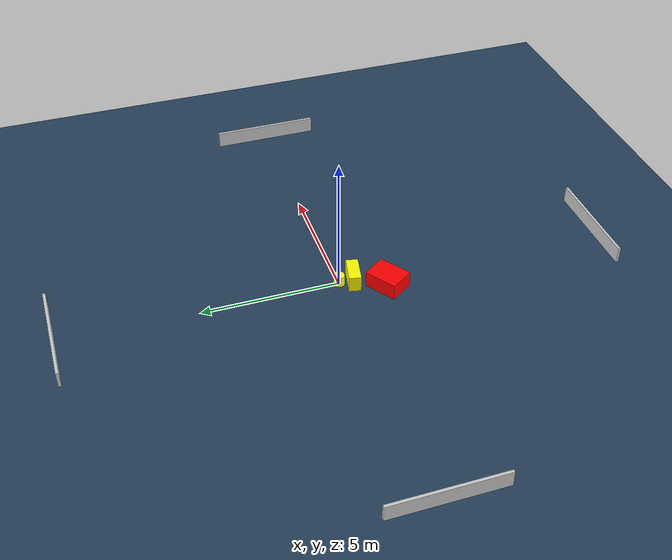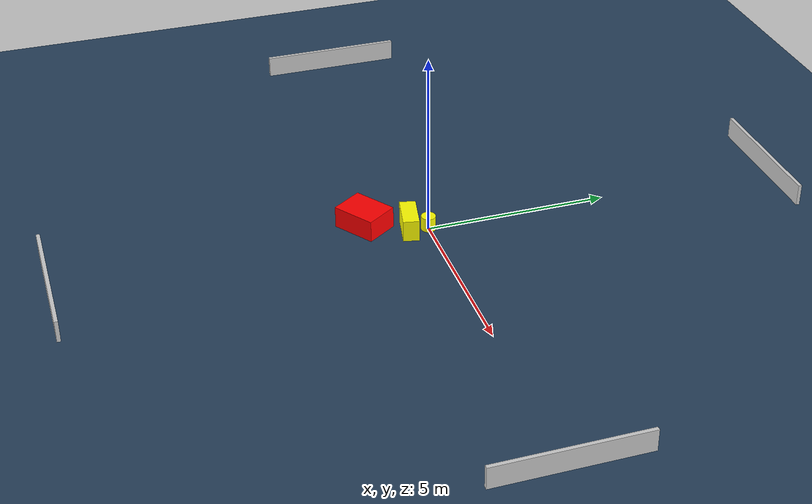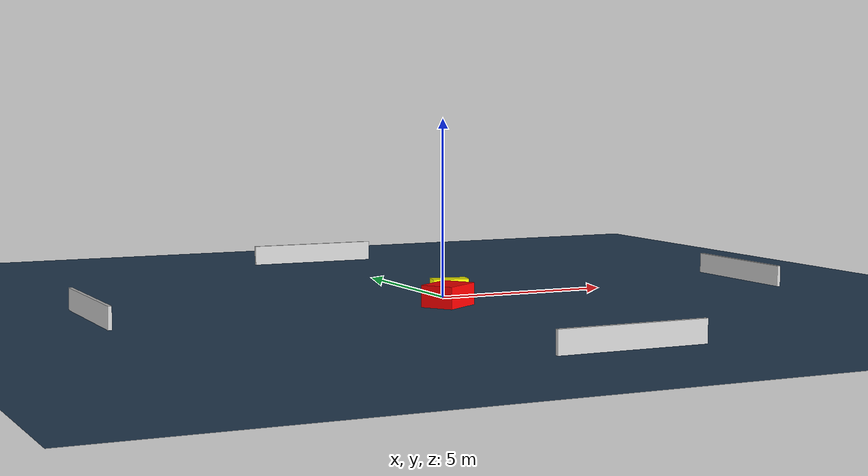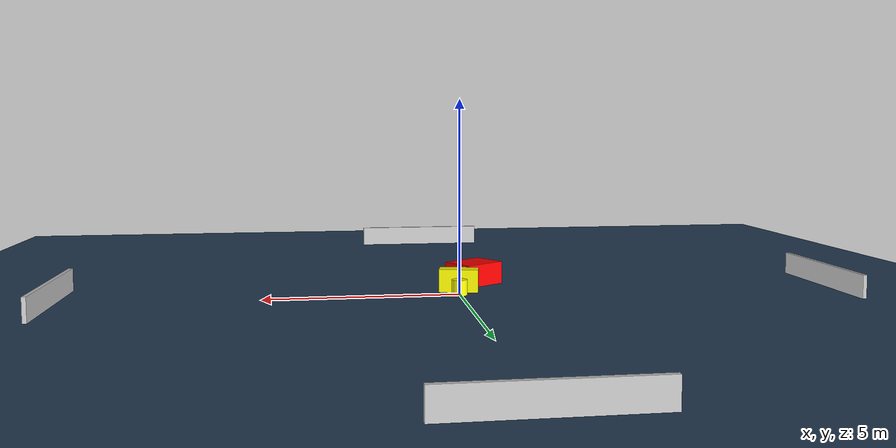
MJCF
<?xml version="1.0" ?>
<mujoco model="generated_environment">
  <option timestep="0.01" integrator="RK4" cone="elliptic"/>
  <default>
    <geom density="1"/>
  </default>
  <asset>
    <texture builtin="gradient" height="3072" name="skybox" rgb1="0.3 0.5 0.7" rgb2="0 0 0" type="skybox" width="512"/>
    <texture builtin="checker" height="300" name="groundplane" rgb1="0.2 0.3 0.4" rgb2="0.1 0.2 0.3" type="2d" width="300"/>
    <material name="groundplane" reflectance="0.2" texrepeat="5 5" texture="groundplane"/>
  </asset>
  <worldbody>
    <light dir="0 0 -1" directional="true" pos="0 0 1.5"/>
    <geom condim="3" friction="0.5 0.005 0.001" material="groundplane" name="floor" pos="0 0 0" size="0 0 0.05" type="plane"/>
    <body name="walls">
      <geom name="wall_1" condim="4" pos="-10.0 0.0 0.3" rgba="0.800000011920929 0.800000011920929 0.800000011920929 1.0" size="0.05 2.0 0.3" type="box"/>
      <geom name="wall_2" condim="4" pos="10.0 0.0 0.3" rgba="0.800000011920929 0.800000011920929 0.800000011920929 1.0" size="0.05 2.0 0.3" type="box"/>
      <geom name="wall_3" condim="4" pos="0.0 -10.0 0.3" rgba="0.800000011920929 0.800000011920929 0.800000011920929 1.0" size="2.0 0.05 0.3" type="box"/>
      <geom name="wall_4" condim="4" pos="0.0 10.0 0.3" rgba="0.800000011920929 0.800000011920929 0.800000011920929 1.0" size="2.0 0.05 0.3" type="box"/>
    </body>
    <body name="robot">
      <joint name="joint_x" type="slide" pos="0 0 0" axis="1 0 0"/>
      <joint name="joint_y" type="slide" pos="0 0 0" axis="0 1 0"/>
      <geom name="robot" type="cylinder" pos="0.0 0.0 0.2" size="0.2 0.2 0.0" mass="5.0" friction="1.0 0.005 0.0001" condim="4" rgba="1.0 1.0 0.0 1.0"/>
    </body>
    <body name="obstacle_1_movable">
      <geom name="obstacle_1_movable" condim="4" pos="-0.059684297115356715 -0.5149685915872004 0.3" euler="0 0 78.63017511205139" friction="0.0 0.005 0.001" rgba="1.0 1.0 0.0 1.0" size="0.21917710578201163 0.5087763526999007 0.3" type="box" mass="0.1"/>
      <joint type="free"/>
    </body>
    <body name="obstacle_2_static">
      <geom name="obstacle_2_static" condim="4" pos="-0.6285786508607601 -1.5970954260330803 0.3" euler="0 0 214.43849714824668" friction="0.0 0.005 0.001" rgba="1.0 0.0 0.0 1.0" size="0.6159160607618437 0.4722210168145515 0.3" type="box"/>
    </body>
  </worldbody>
  <actuator>
    <motor name="actuator_x" joint="joint_x" gear="1" ctrlrange="-1 1"/>
    <motor name="actuator_y" joint="joint_y" gear="1" ctrlrange="-1 1"/>
  </actuator>
</mujoco>
